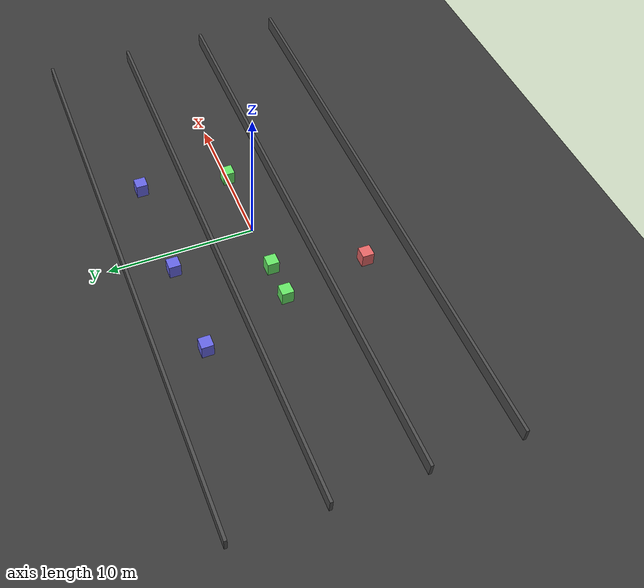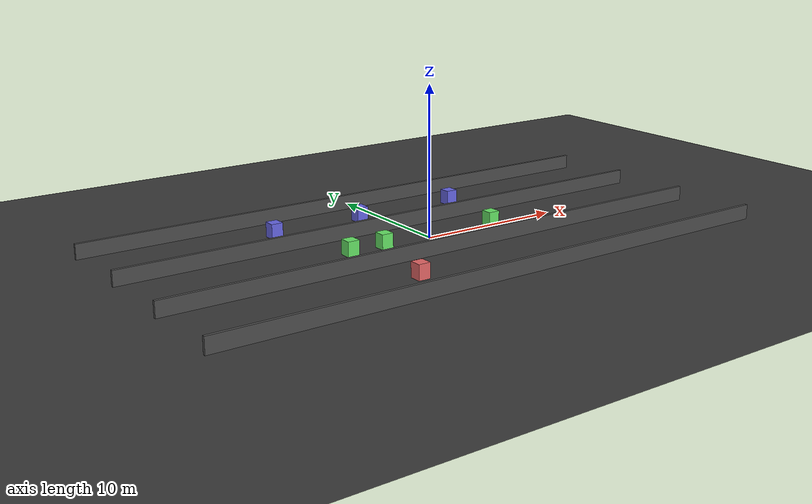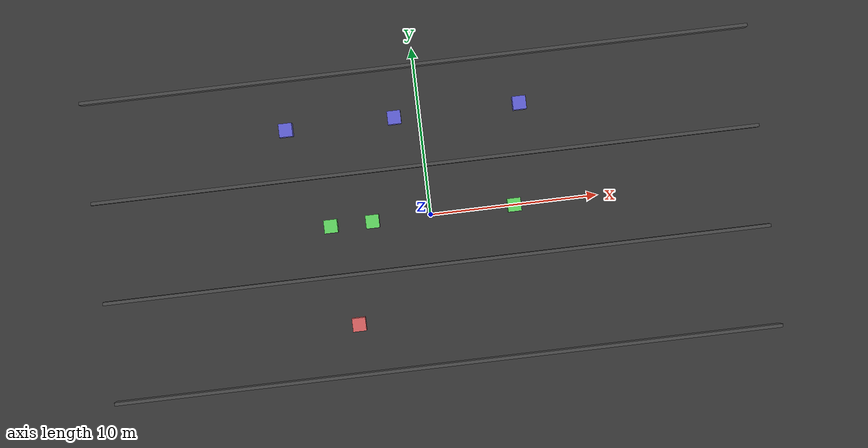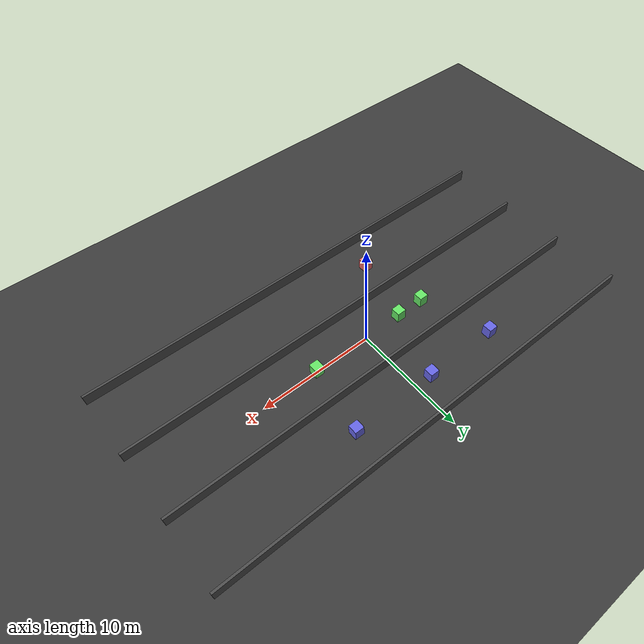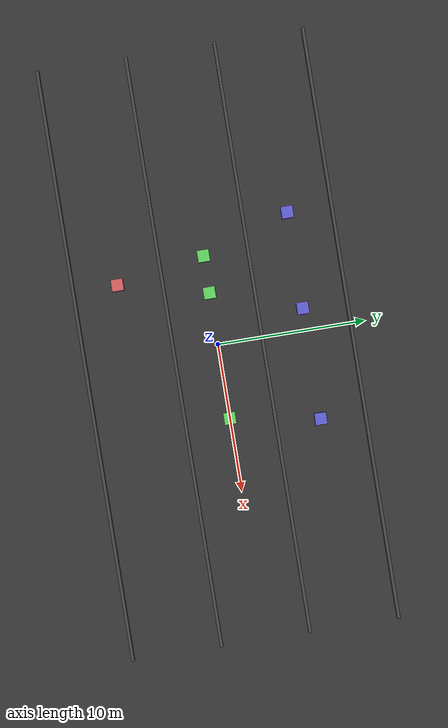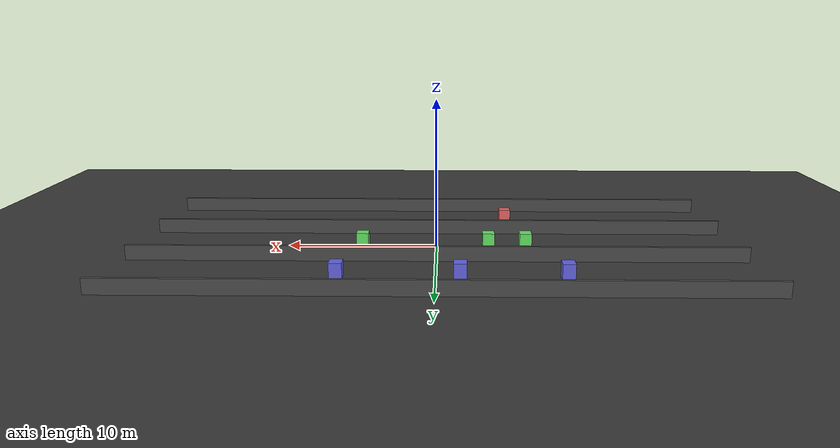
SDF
<?xml version="1.0" ?>
<sdf version="1.6">
  <world name="pasillos_obstaculos">
    <plugin
      filename="ignition-gazebo-physics-system"
      name="ignition::gazebo::systems::Physics">
    </plugin>
    <plugin
      filename="ignition-gazebo-user-commands-system"
      name="ignition::gazebo::systems::UserCommands">
    </plugin>
    <plugin
      filename="ignition-gazebo-scene-broadcaster-system"
      name="ignition::gazebo::systems::SceneBroadcaster">
    </plugin>
    <plugin
      filename="ignition-gazebo-sensors-system"
      name="ignition::gazebo::systems::Sensors">
      <render_engine>ogre2</render_engine>
    </plugin>
    <plugin
      filename="ignition-gazebo-imu-system"
      name="ignition::gazebo::systems::Imu">
    </plugin>
    <plugin
      filename="ignition-gazebo-navsat-system"
      name="ignition::gazebo::systems::NavSat">
    </plugin>

    <spherical_coordinates>
      <surface_model>EARTH_WGS84</surface_model>
      <latitude_deg>-31.4217989</latitude_deg>
      <longitude_deg>-64.1024432</longitude_deg>
      <elevation>0.0</elevation>
    </spherical_coordinates>
    <light name='sun' type='directional'>
      <cast_shadows>0</cast_shadows>
      <pose>0 0 10 0 0 0</pose>
      <diffuse>0.8 0.8 0.8 1</diffuse>
      <specular>0.8 0.8 0.8 1</specular>
      <attenuation>
        <range>1000</range>
        <constant>0.9</constant>
        <linear>0.01</linear>
        <quadratic>0.001</quadratic>
      </attenuation>
      <direction>-0.5 0.1 -0.9</direction>
    </light>
    <model name='ground_plane'>
      <static>1</static>
      <link name='link'>
        <collision name='collision'>
          <pose>0 0 -0.05 0 0 0</pose>
          <geometry>
            <box>
              <size>2000 2000 0.1</size>
            </box>
          </geometry>
          <max_contacts>10</max_contacts>
          <surface>
            <friction>
              <ode>
                <mu>2.5</mu>
                <mu2>2.5</mu2>
                <slip1>0.0</slip1>
                <slip2>0.0</slip2>
              </ode>
            </friction>
          </surface>
        </collision>
        <visual name='visual'>
          <geometry>
            <plane>
              <normal>0 0 1</normal>
              <size>2000 2000</size>
            </plane>
          </geometry>
          <material>
            <ambient>0.20 0.20 0.20 1</ambient>
            <diffuse>0.23 0.23 0.23 1</diffuse>
            <specular>0.18 0.18 0.18 1</specular>
          </material>
        </visual>
      </link>
    </model>

    <physics name="3ms" type="dart">
      <max_step_size>0.003</max_step_size>
      <real_time_factor>1</real_time_factor>
    </physics>

    <!-- Pasillos: muros que delimitan tres carriles anchos (cada 6 m de ancho) -->
    <model name="corridor_wall_1">
      <static>true</static>
      <pose>0 -9 0.5 0 0 0</pose>
      <link name="link">
        <collision name="collision">
          <geometry>
            <box><size>40 0.2 1</size></box>
          </geometry>
        </collision>
        <visual name="visual">
          <geometry>
            <box><size>40 0.2 1</size></box>
          </geometry>
          <material>
            <ambient>0.2 0.2 0.2 1</ambient>
            <diffuse>0.3 0.3 0.3 1</diffuse>
          </material>
        </visual>
      </link>
    </model>

    <model name="corridor_wall_2">
      <static>true</static>
      <pose>0 -3 0.5 0 0 0</pose>
      <link name="link">
        <collision name="collision">
          <geometry>
            <box><size>40 0.2 1</size></box>
          </geometry>
        </collision>
        <visual name="visual">
          <geometry>
            <box><size>40 0.2 1</size></box>
          </geometry>
          <material>
            <ambient>0.2 0.2 0.2 1</ambient>
            <diffuse>0.3 0.3 0.3 1</diffuse>
          </material>
        </visual>
      </link>
    </model>

    <model name="corridor_wall_3">
      <static>true</static>
      <pose>0 3 0.5 0 0 0</pose>
      <link name="link">
        <collision name="collision">
          <geometry>
            <box><size>40 0.2 1</size></box>
          </geometry>
        </collision>
        <visual name="visual">
          <geometry>
            <box><size>40 0.2 1</size></box>
          </geometry>
          <material>
            <ambient>0.2 0.2 0.2 1</ambient>
            <diffuse>0.3 0.3 0.3 1</diffuse>
          </material>
        </visual>
      </link>
    </model>

    <model name="corridor_wall_4">
      <static>true</static>
      <pose>0 9 0.5 0 0 0</pose>
      <link name="link">
        <collision name="collision">
          <geometry>
            <box><size>40 0.2 1</size></box>
          </geometry>
        </collision>
        <visual name="visual">
          <geometry>
            <box><size>40 0.2 1</size></box>
          </geometry>
          <material>
            <ambient>0.2 0.2 0.2 1</ambient>
            <diffuse>0.3 0.3 0.3 1</diffuse>
          </material>
        </visual>
      </link>
    </model>

    <!-- Obstaculos: carril inferior (y=-6): 1 obstaculo -->
    <model name="lane1_box_1">
      <static>true</static>
      <pose>-5 -6 0.5 0 0 0</pose>
      <link name="link">
        <collision name="collision">
          <geometry>
            <box><size>0.8 0.8 1</size></box>
          </geometry>
        </collision>
        <visual name="visual">
          <geometry>
            <box><size>0.8 0.8 1</size></box>
          </geometry>
          <material>
            <ambient>0.8 0.3 0.3 1</ambient>
            <diffuse>0.9 0.4 0.4 1</diffuse>
          </material>
        </visual>
      </link>
    </model>

    <!-- Obstaculos: carril central (y=0): 3 en linea -->
    <model name="lane2_box_1">
      <static>true</static>
      <pose>-6 0 0.5 0 0 1.5708</pose>
      <link name="link">
        <collision name="collision">
          <geometry>
            <box><size>0.8 0.8 1</size></box>
          </geometry>
        </collision>
        <visual name="visual">
          <geometry>
            <box><size>0.8 0.8 1</size></box>
          </geometry>
          <material>
            <ambient>0.3 0.8 0.3 1</ambient>
            <diffuse>0.4 0.9 0.4 1</diffuse>
          </material>
        </visual>
      </link>
    </model>
    <model name="lane2_box_2">
      <static>true</static>
      <pose>-3.5 0 0.5 0 0 1.5708</pose>
      <link name="link">
        <collision name="collision">
          <geometry>
            <box><size>0.8 0.8 1</size></box>
          </geometry>
        </collision>
        <visual name="visual">
          <geometry>
            <box><size>0.8 0.8 1</size></box>
          </geometry>
          <material>
            <ambient>0.3 0.8 0.3 1</ambient>
            <diffuse>0.4 0.9 0.4 1</diffuse>
          </material>
        </visual>
      </link>
    </model>
    <model name="lane2_box_3">
      <static>true</static>
      <pose>5 0 0.5 0 0 1.5708</pose>
      <link name="link">
        <collision name="collision">
          <geometry>
            <box><size>0.8 0.8 1</size></box>
          </geometry>
        </collision>
        <visual name="visual">
          <geometry>
            <box><size>0.8 0.8 1</size></box>
          </geometry>
          <material>
            <ambient>0.3 0.8 0.3 1</ambient>
            <diffuse>0.4 0.9 0.4 1</diffuse>
          </material>
        </visual>
      </link>
    </model>

    <!-- Obstaculos: carril superior (y=6): 3 con separacion irregular -->
    <model name="lane3_box_1">
      <static>true</static>
      <pose>-8 6 0.5 0 0 0</pose>
      <link name="link">
        <collision name="collision">
          <geometry>
            <box><size>0.8 0.8 1</size></box>
          </geometry>
        </collision>
        <visual name="visual">
          <geometry>
            <box><size>0.8 0.8 1</size></box>
          </geometry>
          <material>
            <ambient>0.3 0.3 0.8 1</ambient>
            <diffuse>0.4 0.4 0.9 1</diffuse>
          </material>
        </visual>
      </link>
    </model>
    <model name="lane3_box_2">
      <static>true</static>
      <pose>-1.5 6 0.5 0 0 0</pose>
      <link name="link">
        <collision name="collision">
          <geometry>
            <box><size>0.8 0.8 1</size></box>
          </geometry>
        </collision>
        <visual name="visual">
          <geometry>
            <box><size>0.8 0.8 1</size></box>
          </geometry>
          <material>
            <ambient>0.3 0.3 0.8 1</ambient>
            <diffuse>0.4 0.4 0.9 1</diffuse>
          </material>
        </visual>
      </link>
    </model>
    <model name="lane3_box_3">
      <static>true</static>
      <pose>6 6 0.5 0 0 0</pose>
      <link name="link">
        <collision name="collision">
          <geometry>
            <box><size>0.8 0.8 1</size></box>
          </geometry>
        </collision>
        <visual name="visual">
          <geometry>
            <box><size>0.8 0.8 1</size></box>
          </geometry>
          <material>
            <ambient>0.3 0.3 0.8 1</ambient>
            <diffuse>0.4 0.4 0.9 1</diffuse>
          </material>
        </visual>
      </link>
    </model>
  </world>
</sdf>
